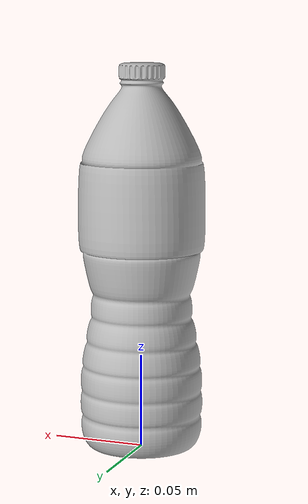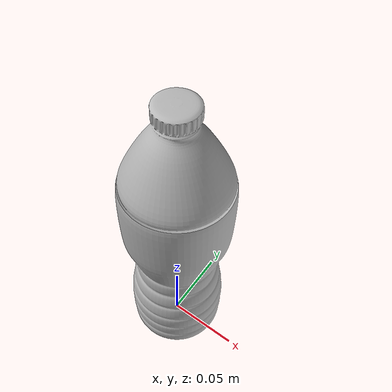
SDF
<?xml version="1.0" ?>
<sdf version="1.7">

  <model name="water_bottle_03">

    <static>false</static>

    <link name="bottle_link">

      <pose>0 0 0.105 0 0 0</pose>

      <inertial>
        <mass>0.5</mass>

        <inertia>
          <ixx>0.0019</ixx>
          <iyy>0.0019</iyy>
          <izz>0.0005</izz>
          <ixy>0</ixy>
          <ixz>0</ixz>
          <iyz>0</iyz>
        </inertia>
      </inertial>

      <collision name="collision">
        <geometry>
          <cylinder>
            <radius>0.032</radius>
            <length>0.21</length>
          </cylinder>
        </geometry>
      </collision>

      <visual name="bottle_visual">
        <pose>0 0 -0.10839878 0 0 0</pose>
        <geometry>
          <mesh>
            <uri>model://water_bottle_03/meshes/bottle_complete.obj</uri>
            <scale>0.06706608 0.06706608 0.05761422</scale>
          </mesh>
        </geometry>
      </visual>

    </link>

  </model>

</sdf>
